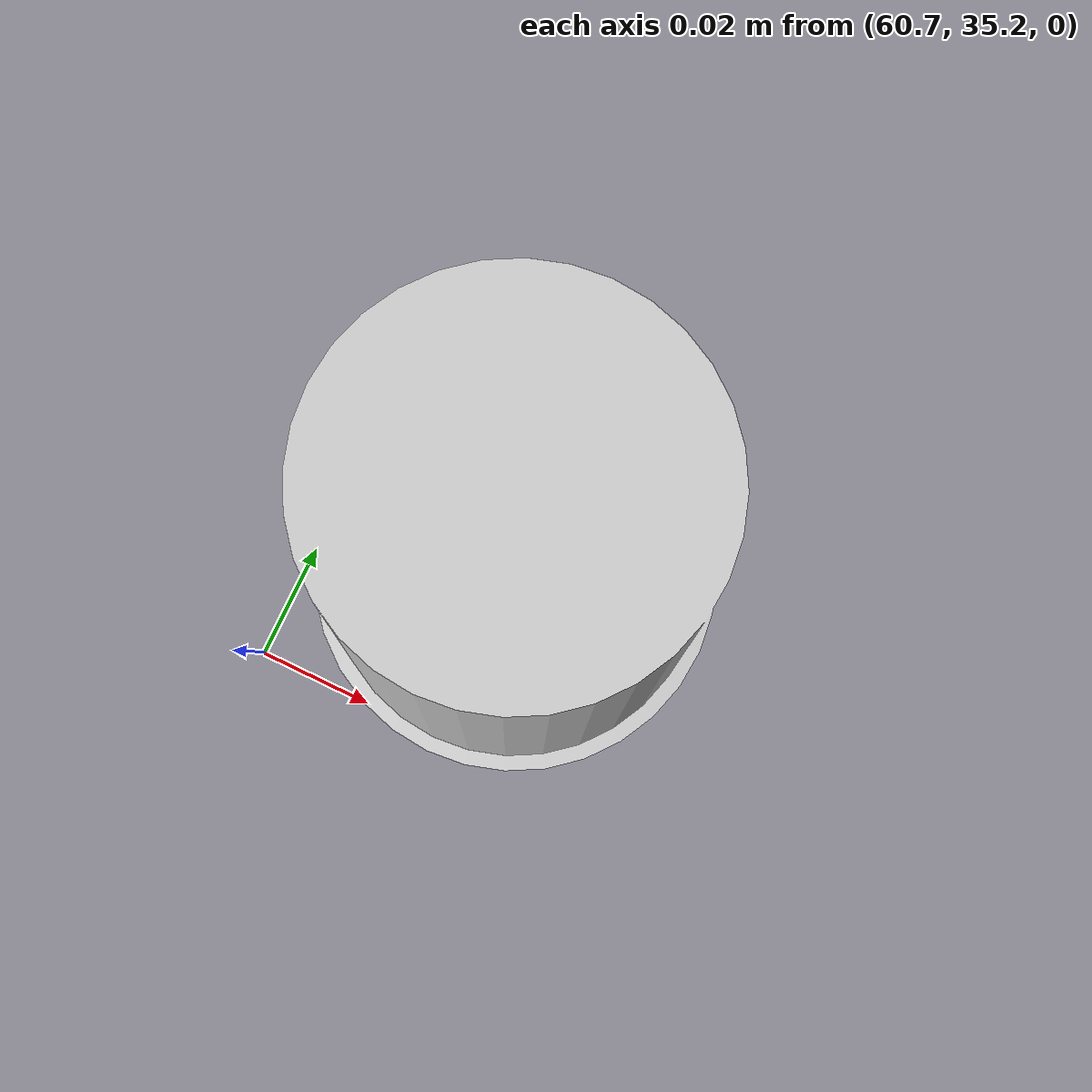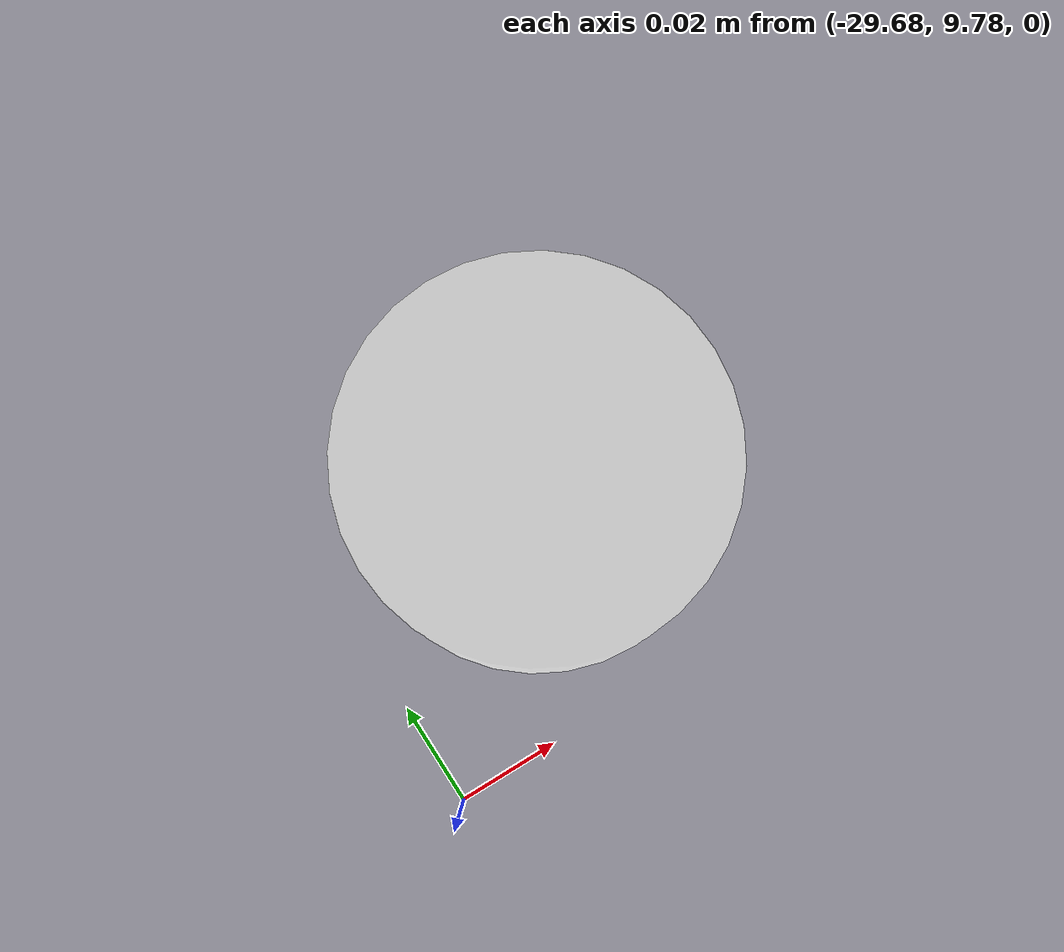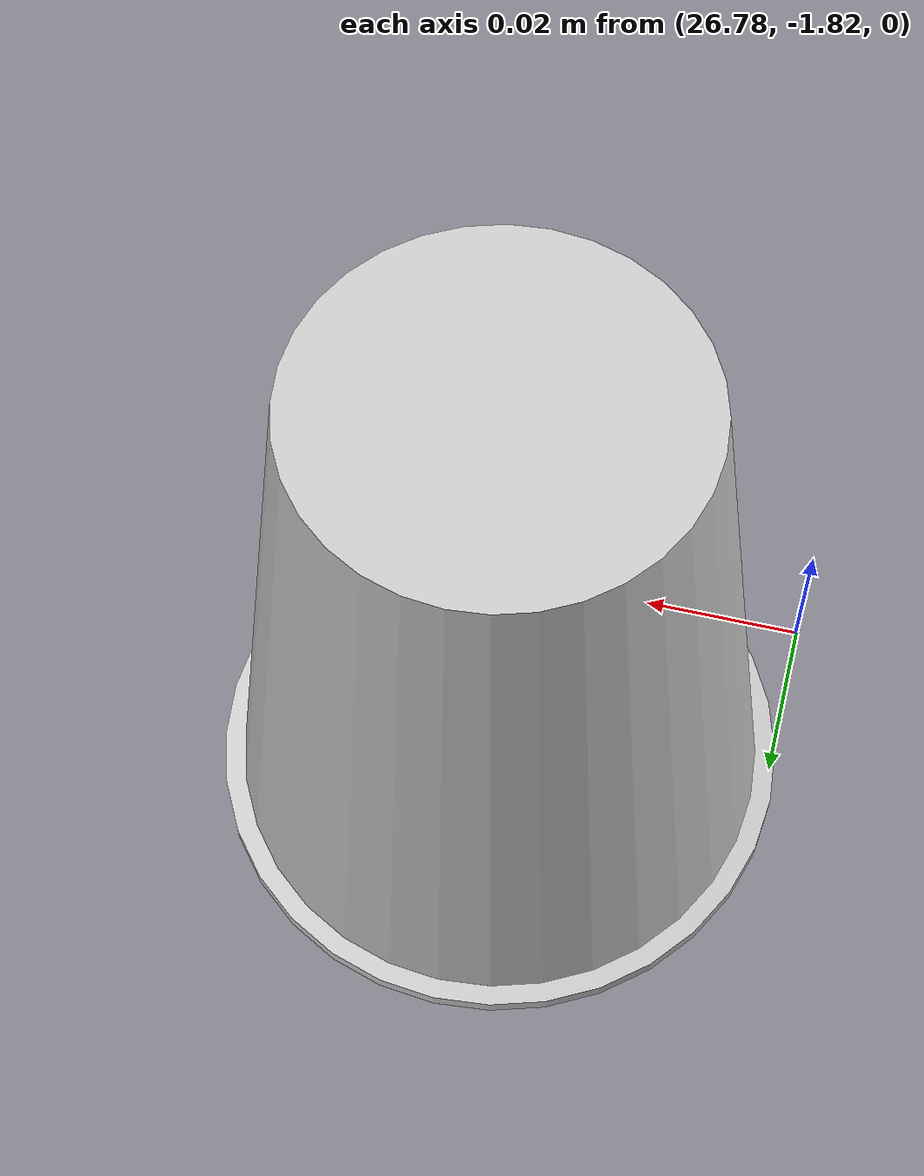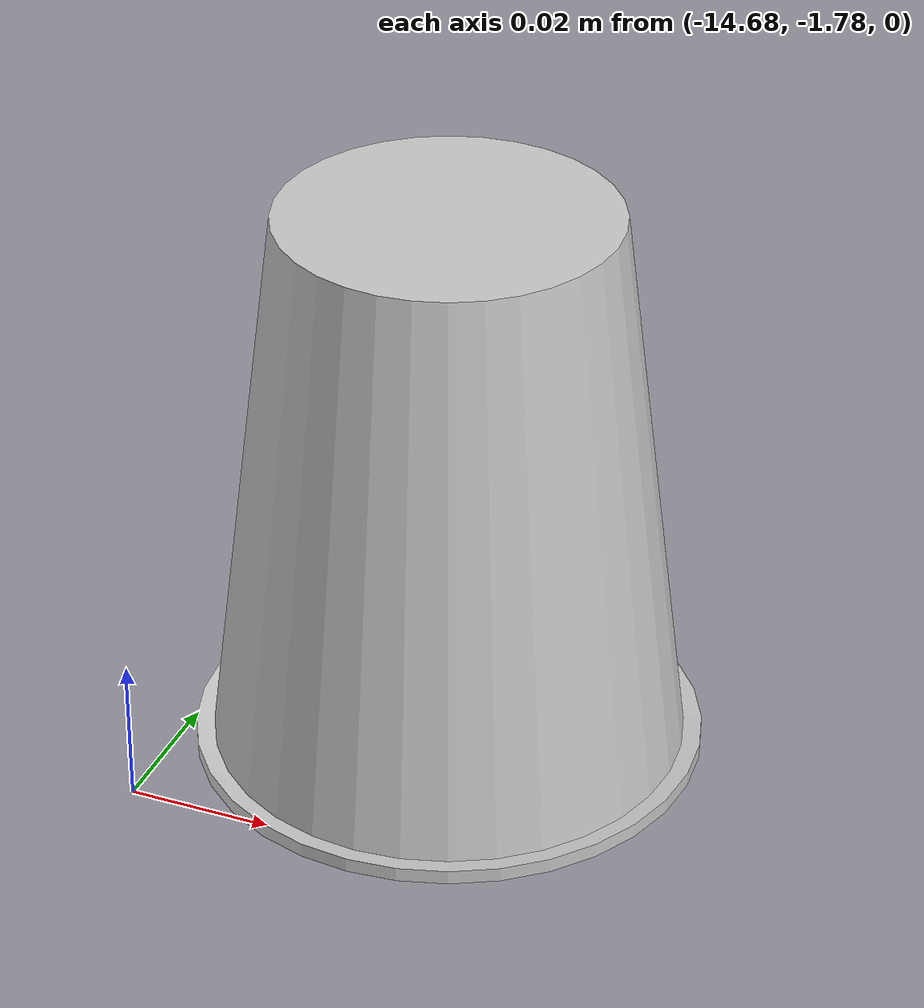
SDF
<?xml version='1.0' encoding='UTF-8'?>
<sdf version="1.4">
  <model name="some track">
    <include>
      <uri>model://cone_yellow</uri>
      <pose>2.4687968414439507 -1.571403360044684 0 0 0 0</pose>
      <name>cone_right</name>
    </include>
    <include>
      <uri>model://cone_yellow</uri>
      <pose>7.2177965690843555 -1.7217569277008586 0 0 0 0</pose>
      <name>cone_right</name>
    </include>
    <include>
      <uri>model://cone_yellow</uri>
      <pose>12.11728470155513 -1.8536976725558636 0 0 0 0</pose>
      <name>cone_right</name>
    </include>
    <include>
      <uri>model://cone_yellow</uri>
      <pose>17.0661174567465 -1.7040297701637646 0 0 0 0</pose>
      <name>cone_right</name>
    </include>
    <include>
      <uri>model://cone_yellow</uri>
      <pose>21.72917562834383 -1.8297416030346445 0 0 0 0</pose>
      <name>cone_right</name>
    </include>
    <include>
      <uri>model://cone_yellow</uri>
      <pose>26.81407494741656 -1.7948843006090547 0 0 0 0</pose>
      <name>cone_right</name>
    </include>
    <include>
      <uri>model://cone_yellow</uri>
      <pose>35.31961328573314 4.968242787702878 0 0 0 0</pose>
      <name>cone_right</name>
    </include>
    <include>
      <uri>model://cone_yellow</uri>
      <pose>35.909901975970165 10.293324491218828 0 0 0 0</pose>
      <name>cone_right</name>
    </include>
    <include>
      <uri>model://cone_yellow</uri>
      <pose>35.97671006146863 15.26495160903515 0 0 0 0</pose>
      <name>cone_right</name>
    </include>
    <include>
      <uri>model://cone_yellow</uri>
      <pose>37.98491671668625 18.156239703634824 0 0 0 0</pose>
      <name>cone_right</name>
    </include>
    <include>
      <uri>model://cone_yellow</uri>
      <pose>41.90302554091211 19.98205698067222 0 0 0 0</pose>
      <name>cone_right</name>
    </include>
    <include>
      <uri>model://cone_yellow</uri>
      <pose>46.261161255737356 20.79041227892938 0 0 0 0</pose>
      <name>cone_right</name>
    </include>
    <include>
      <uri>model://cone_yellow</uri>
      <pose>50.94587187525274 20.99263552426847 0 0 0 0</pose>
      <name>cone_right</name>
    </include>
    <include>
      <uri>model://cone_yellow</uri>
      <pose>55.831312539195174 21.154967270968132 0 0 0 0</pose>
      <name>cone_right</name>
    </include>
    <include>
      <uri>model://cone_yellow</uri>
      <pose>61.00761963873726 22.209639452450606 0 0 0 0</pose>
      <name>cone_right</name>
    </include>
    <include>
      <uri>model://cone_yellow</uri>
      <pose>65.95587569915999 32.14256178915551 0 0 0 0</pose>
      <name>cone_right</name>
    </include>
    <include>
      <uri>model://cone_yellow</uri>
      <pose>57.62628428112058 39.28105670189558 0 0 0 0</pose>
      <name>cone_right</name>
    </include>
    <include>
      <uri>model://cone_yellow</uri>
      <pose>52.57007662282878 39.63357216936336 0 0 0 0</pose>
      <name>cone_right</name>
    </include>
    <include>
      <uri>model://cone_yellow</uri>
      <pose>47.757731710413886 39.98364501270321 0 0 0 0</pose>
      <name>cone_right</name>
    </include>
    <include>
      <uri>model://cone_yellow</uri>
      <pose>42.809611348179246 40.16740664524 0 0 0 0</pose>
      <name>cone_right</name>
    </include>
    <include>
      <uri>model://cone_yellow</uri>
      <pose>37.83437497268665 39.956879034266606 0 0 0 0</pose>
      <name>cone_right</name>
    </include>
    <include>
      <uri>model://cone_yellow</uri>
      <pose>33.37013238406025 40.380234410868525 0 0 0 0</pose>
      <name>cone_right</name>
    </include>
    <include>
      <uri>model://cone_yellow</uri>
      <pose>28.533659258659707 41.24069791461943 0 0 0 0</pose>
      <name>cone_right</name>
    </include>
    <include>
      <uri>model://cone_yellow</uri>
      <pose>22.9521634283543 39.72158356873673 0 0 0 0</pose>
      <name>cone_right</name>
    </include>
    <include>
      <uri>model://cone_yellow</uri>
      <pose>19.599863077943716 35.06798578482923 0 0 0 0</pose>
      <name>cone_right</name>
    </include>
    <include>
      <uri>model://cone_yellow</uri>
      <pose>14.230888687370472 31.303739400898877 0 0 0 0</pose>
      <name>cone_right</name>
    </include>
    <include>
      <uri>model://cone_yellow</uri>
      <pose>11.206052524723852 33.16606974603546 0 0 0 0</pose>
      <name>cone_right</name>
    </include>
    <include>
      <uri>model://cone_yellow</uri>
      <pose>10.666291188033235 37.21907371908294 0 0 0 0</pose>
      <name>cone_right</name>
    </include>
    <include>
      <uri>model://cone_yellow</uri>
      <pose>-0.2661393926046717 40.174072222145504 0 0 0 0</pose>
      <name>cone_right</name>
    </include>
    <include>
      <uri>model://cone_yellow</uri>
      <pose>-9.922156053905944 37.32917352561087 0 0 0 0</pose>
      <name>cone_right</name>
    </include>
    <include>
      <uri>model://cone_yellow</uri>
      <pose>-13.3286671744529 33.129755115171605 0 0 0 0</pose>
      <name>cone_right</name>
    </include>
    <include>
      <uri>model://cone_yellow</uri>
      <pose>-16.273965332474553 29.328940823767894 0 0 0 0</pose>
      <name>cone_right</name>
    </include>
    <include>
      <uri>model://cone_yellow</uri>
      <pose>-19.282260960469614 25.545067778742542 0 0 0 0</pose>
      <name>cone_right</name>
    </include>
    <include>
      <uri>model://cone_yellow</uri>
      <pose>-22.331474059900838 21.703097410864377 0 0 0 0</pose>
      <name>cone_right</name>
    </include>
    <include>
      <uri>model://cone_yellow</uri>
      <pose>-24.94281488389468 17.376499263328075 0 0 0 0</pose>
      <name>cone_right</name>
    </include>
    <include>
      <uri>model://cone_yellow</uri>
      <pose>-27.738028049315652 13.696034982544516 0 0 0 0</pose>
      <name>cone_right</name>
    </include>
    <include>
      <uri>model://cone_yellow</uri>
      <pose>-29.41892570606269 3.1101639849635525 0 0 0 0</pose>
      <name>cone_right</name>
    </include>
    <include>
      <uri>model://cone_yellow</uri>
      <pose>-24.877198602473563 -0.6861467226545961 0 0 0 0</pose>
      <name>cone_right</name>
    </include>
    <include>
      <uri>model://cone_yellow</uri>
      <pose>-19.559344336529676 -1.308457982126582 0 0 0 0</pose>
      <name>cone_right</name>
    </include>
    <include>
      <uri>model://cone_yellow</uri>
      <pose>-14.646183079593072 -1.7499905743750774 0 0 0 0</pose>
      <name>cone_right</name>
    </include>
    <include>
      <uri>model://cone_yellow</uri>
      <pose>-9.72495009631012 -1.7336230789561107 0 0 0 0</pose>
      <name>cone_right</name>
    </include>
    <include>
      <uri>model://cone_yellow</uri>
      <pose>30.696620805458657 -1.0733159711058917 0 0 0 0</pose>
      <name>cone_right</name>
    </include>
    <include>
      <uri>model://cone_yellow</uri>
      <pose>33.83083852341473 1.175144565688683 0 0 0 0</pose>
      <name>cone_right</name>
    </include>
    <include>
      <uri>model://cone_yellow</uri>
      <pose>64.62225643007372 24.367598621143777 0 0 0 0</pose>
      <name>cone_right</name>
    </include>
    <include>
      <uri>model://cone_yellow</uri>
      <pose>66.18368735840328 28.152885720124537 0 0 0 0</pose>
      <name>cone_right</name>
    </include>
    <include>
      <uri>model://cone_yellow</uri>
      <pose>64.90615296249727 35.48687947439976 0 0 0 0</pose>
      <name>cone_right</name>
    </include>
    <include>
      <uri>model://cone_yellow</uri>
      <pose>62.35108417068526 38.04194826621177 0 0 0 0</pose>
      <name>cone_right</name>
    </include>
    <include>
      <uri>model://cone_yellow</uri>
      <pose>17.784859743337822 31.77327844041562 0 0 0 0</pose>
      <name>cone_right</name>
    </include>
    <include>
      <uri>model://cone_yellow</uri>
      <pose>8.851483614558362 40.05633216901573 0 0 0 0</pose>
      <name>cone_right</name>
    </include>
    <include>
      <uri>model://cone_yellow</uri>
      <pose>6.318649003333533 40.60397208495624 0 0 0 0</pose>
      <name>cone_right</name>
    </include>
    <include>
      <uri>model://cone_yellow</uri>
      <pose>3.306629465660766 40.56974459020996 0 0 0 0</pose>
      <name>cone_right</name>
    </include>
    <include>
      <uri>model://cone_yellow</uri>
      <pose>-3.966713167924034 40.62750348759431 0 0 0 0</pose>
      <name>cone_right</name>
    </include>
    <include>
      <uri>model://cone_yellow</uri>
      <pose>-6.961618958223667 39.66485519785515 0 0 0 0</pose>
      <name>cone_right</name>
    </include>
    <include>
      <uri>model://cone_yellow</uri>
      <pose>-29.637334227635137 9.822758215941004 0 0 0 0</pose>
      <name>cone_right</name>
    </include>
    <include>
      <uri>model://cone_yellow</uri>
      <pose>-30.038437681693125 6.0122754023901415 0 0 0 0</pose>
      <name>cone_right</name>
    </include>
    <include>
      <uri>model://cone_yellow</uri>
      <pose>-27.76551810869786 0.39682704557834825 0 0 0 0</pose>
      <name>cone_right</name>
    </include>
    <include>
      <uri>model://cone_yellow</uri>
      <pose>-2.7565165774686093 -1.7538426320828862 0 0 0 0</pose>
      <name>cone_right</name>
    </include>
    <include>
      <uri>model://cone_yellow</uri>
      <pose>-5.851450636558006 -1.8022009767561542 0 0 0 0</pose>
      <name>cone_right</name>
    </include>
    <include>
      <uri>model://cone_blue</uri>
      <pose>2.3977461797194954 1.6778199015162256 0 0 0 0</pose>
      <name>cone_left</name>
    </include>
    <include>
      <uri>model://cone_blue</uri>
      <pose>7.352291628557972 1.5254589688753437 0 0 0 0</pose>
      <name>cone_left</name>
    </include>
    <include>
      <uri>model://cone_blue</uri>
      <pose>12.164695073750066 1.3959565023692682 0 0 0 0</pose>
      <name>cone_left</name>
    </include>
    <include>
      <uri>model://cone_blue</uri>
      <pose>16.950639240102408 1.543918009816803 0 0 0 0</pose>
      <name>cone_left</name>
    </include>
    <include>
      <uri>model://cone_blue</uri>
      <pose>21.890267686844197 1.416263533851019 0 0 0 0</pose>
      <name>cone_left</name>
    </include>
    <include>
      <uri>model://cone_blue</uri>
      <pose>26.662239902552326 1.4515670110774574 0 0 0 0</pose>
      <name>cone_left</name>
    </include>
    <include>
      <uri>model://cone_blue</uri>
      <pose>30.718785063027887 2.840395839916845 0 0 0 0</pose>
      <name>cone_left</name>
    </include>
    <include>
      <uri>model://cone_blue</uri>
      <pose>32.26282054075304 6.072107867428207 0 0 0 0</pose>
      <name>cone_left</name>
    </include>
    <include>
      <uri>model://cone_blue</uri>
      <pose>32.66276541192594 10.429721464964702 0 0 0 0</pose>
      <name>cone_left</name>
    </include>
    <include>
      <uri>model://cone_blue</uri>
      <pose>32.73089112595232 15.429752816081043 0 0 0 0</pose>
      <name>cone_left</name>
    </include>
    <include>
      <uri>model://cone_blue</uri>
      <pose>40.710457215756136 23.00534671039292 0 0 0 0</pose>
      <name>cone_left</name>
    </include>
    <include>
      <uri>model://cone_blue</uri>
      <pose>45.825710381699686 24.011108249725105 0 0 0 0</pose>
      <name>cone_left</name>
    </include>
    <include>
      <uri>model://cone_blue</uri>
      <pose>50.852890827136456 24.241305178864206 0 0 0 0</pose>
      <name>cone_left</name>
    </include>
    <include>
      <uri>model://cone_blue</uri>
      <pose>55.70068288454001 24.402340962634167 0 0 0 0</pose>
      <name>cone_left</name>
    </include>
    <include>
      <uri>model://cone_blue</uri>
      <pose>60.04442900078583 25.313631043122644 0 0 0 0</pose>
      <name>cone_left</name>
    </include>
    <include>
      <uri>model://cone_blue</uri>
      <pose>62.66162465675967 28.10801646526442 0 0 0 0</pose>
      <name>cone_left</name>
    </include>
    <include>
      <uri>model://cone_blue</uri>
      <pose>62.71728114801657 31.870522576349515 0 0 0 0</pose>
      <name>cone_left</name>
    </include>
    <include>
      <uri>model://cone_blue</uri>
      <pose>60.73277280885991 35.23237690083124 0 0 0 0</pose>
      <name>cone_left</name>
    </include>
    <include>
      <uri>model://cone_blue</uri>
      <pose>57.08929031760545 36.07572715828414 0 0 0 0</pose>
      <name>cone_left</name>
    </include>
    <include>
      <uri>model://cone_blue</uri>
      <pose>52.375705828076875 36.389389684645906 0 0 0 0</pose>
      <name>cone_left</name>
    </include>
    <include>
      <uri>model://cone_blue</uri>
      <pose>47.514233233093215 36.74277962032072 0 0 0 0</pose>
      <name>cone_left</name>
    </include>
    <include>
      <uri>model://cone_blue</uri>
      <pose>42.75417159973573 36.91787953590663 0 0 0 0</pose>
      <name>cone_left</name>
    </include>
    <include>
      <uri>model://cone_blue</uri>
      <pose>37.98839887403188 36.71053083393221 0 0 0 0</pose>
      <name>cone_left</name>
    </include>
    <include>
      <uri>model://cone_blue</uri>
      <pose>32.87893883421129 37.167567466321245 0 0 0 0</pose>
      <name>cone_left</name>
    </include>
    <include>
      <uri>model://cone_blue</uri>
      <pose>28.03451540360199 38.029256585253734 0 0 0 0</pose>
      <name>cone_left</name>
    </include>
    <include>
      <uri>model://cone_blue</uri>
      <pose>24.517897713679265 36.873606014794646 0 0 0 0</pose>
      <name>cone_left</name>
    </include>
    <include>
      <uri>model://cone_blue</uri>
      <pose>22.448432118056843 33.5033278593679 0 0 0 0</pose>
      <name>cone_left</name>
    </include>
    <include>
      <uri>model://cone_blue</uri>
      <pose>20.056612685998214 29.12621267308765 0 0 0 0</pose>
      <name>cone_left</name>
    </include>
    <include>
      <uri>model://cone_blue</uri>
      <pose>13.697827727380764 28.097753435094468 0 0 0 0</pose>
      <name>cone_left</name>
    </include>
    <include>
      <uri>model://cone_blue</uri>
      <pose>8.787647472764021 30.99493709125474 0 0 0 0</pose>
      <name>cone_left</name>
    </include>
    <include>
      <uri>model://cone_blue</uri>
      <pose>7.487586159074573 36.54206977605682 0 0 0 0</pose>
      <name>cone_left</name>
    </include>
    <include>
      <uri>model://cone_blue</uri>
      <pose>4.494379738019011 37.25086624573822 0 0 0 0</pose>
      <name>cone_left</name>
    </include>
    <include>
      <uri>model://cone_blue</uri>
      <pose>0.12464814128351703 36.94765236364017 0 0 0 0</pose>
      <name>cone_left</name>
    </include>
    <include>
      <uri>model://cone_blue</uri>
      <pose>-4.696435207831599 36.93150474003095 0 0 0 0</pose>
      <name>cone_left</name>
    </include>
    <include>
      <uri>model://cone_blue</uri>
      <pose>-8.054704236100758 34.66926305565589 0 0 0 0</pose>
      <name>cone_left</name>
    </include>
    <include>
      <uri>model://cone_blue</uri>
      <pose>-10.727442147230065 31.181389554567133 0 0 0 0</pose>
      <name>cone_left</name>
    </include>
    <include>
      <uri>model://cone_blue</uri>
      <pose>-13.710073674662496 27.33170283919977 0 0 0 0</pose>
      <name>cone_left</name>
    </include>
    <include>
      <uri>model://cone_blue</uri>
      <pose>-16.751376017534326 23.506165768928575 0 0 0 0</pose>
      <name>cone_left</name>
    </include>
    <include>
      <uri>model://cone_blue</uri>
      <pose>-19.747241851397252 19.7322488899139 0 0 0 0</pose>
      <name>cone_left</name>
    </include>
    <include>
      <uri>model://cone_blue</uri>
      <pose>-22.13476129366553 15.740242854814666 0 0 0 0</pose>
      <name>cone_left</name>
    </include>
    <include>
      <uri>model://cone_blue</uri>
      <pose>-25.18813705929474 11.680952865356689 0 0 0 0</pose>
      <name>cone_left</name>
    </include>
    <include>
      <uri>model://cone_blue</uri>
      <pose>-26.257999206250037 3.865838294955709 0 0 0 0</pose>
      <name>cone_left</name>
    </include>
    <include>
      <uri>model://cone_blue</uri>
      <pose>-23.94044454812743 2.425925230508776 0 0 0 0</pose>
      <name>cone_left</name>
    </include>
    <include>
      <uri>model://cone_blue</uri>
      <pose>-19.081825142532097 1.9062699098362672 0 0 0 0</pose>
      <name>cone_left</name>
    </include>
    <include>
      <uri>model://cone_blue</uri>
      <pose>-14.529840052596661 1.4979263426764213 0 0 0 0</pose>
      <name>cone_left</name>
    </include>
    <include>
      <uri>model://cone_blue</uri>
      <pose>-9.679018819738502 1.5160523383482856 0 0 0 0</pose>
      <name>cone_left</name>
    </include>
    <include>
      <uri>model://cone_blue</uri>
      <pose>34.33995963822764 19.30477712625702 0 0 0 0</pose>
      <name>cone_left</name>
    </include>
    <include>
      <uri>model://cone_blue</uri>
      <pose>37.17892496246321 21.386685030696437 0 0 0 0</pose>
      <name>cone_left</name>
    </include>
    <include>
      <uri>model://cone_blue</uri>
      <pose>17.202992332651036 28.00825401832466 0 0 0 0</pose>
      <name>cone_left</name>
    </include>
    <include>
      <uri>model://cone_blue</uri>
      <pose>10.870905804588968 29.06930635545939 0 0 0 0</pose>
      <name>cone_left</name>
    </include>
    <include>
      <uri>model://cone_blue</uri>
      <pose>8.06425123539389 33.79270063044623 0 0 0 0</pose>
      <name>cone_left</name>
    </include>
    <include>
      <uri>model://cone_blue</uri>
      <pose>-26.42850659517125 8.61944785376705 0 0 0 0</pose>
      <name>cone_left</name>
    </include>
    <include>
      <uri>model://cone_blue</uri>
      <pose>-26.69590889787657 6.0122754023901415 0 0 0 0</pose>
      <name>cone_left</name>
    </include>
    <include>
      <uri>model://cone_blue</uri>
      <pose>-2.7565165774686093 1.6312414950461473 0 0 0 0</pose>
      <name>cone_left</name>
    </include>
    <include>
      <uri>model://cone_blue</uri>
      <pose>-5.948167325904549 1.5828831503728722 0 0 0 0</pose>
      <name>cone_left</name>
    </include>
    <include>
      <uri>model://cone_orange_big</uri>
      <pose>-1.3 2.125 0 0 0 0</pose>
      <name>cone_orange_big</name>
    </include>
    <include>
      <uri>model://cone_orange_big</uri>
      <pose>-1.3 -2.125 0 0 0 0</pose>
      <name>cone_orange_big</name>
    </include>
    <include>
      <uri>model://cone_orange_big</uri>
      <pose>1.3 2.125 0 0 0 0</pose>
      <name>cone_orange_big</name>
    </include>
    <include>
      <uri>model://cone_orange_big</uri>
      <pose>1.3 -2.125 0 0 0 0</pose>
      <name>cone_orange_big</name>
    </include>
  </model>
</sdf>

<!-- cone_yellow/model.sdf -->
<sdf version='1.4'>
  <model name="cone_yellow">
    <link name="link">
    <collision name="collision"><geometry><box><size> 0.05 0.05 0.01</size>
             </box></geometry></collision>
      <visual name="visual">
        <geometry>
          <mesh>
            <uri>model://cup.dae</uri>
            <scale>1 1 1</scale>
          </mesh>
        </geometry>
        <material>
            <script>
              <uri>model://cone_yellow/materials/scripts</uri>
              <uri>model://cone_yellow/materials/textures</uri>
              <name>cone_yellow/Image</name>
            </script>
        </material>
      </visual>
    </link>
  </model>
</sdf>

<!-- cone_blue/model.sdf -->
<sdf version='1.4'>
  <model name="cone_blue">
    <link name="link">
    <collision name="collision"><geometry><box><size> 0.05 0.05 0.01</size>
             </box></geometry></collision>
      <visual name="visual">
        <geometry>
          <mesh>
            <uri>model://cup.dae</uri>
            <scale>1 1 1</scale>
          </mesh>
        </geometry>
        <material>
            <script>
              <uri>model://cone_blue/materials/scripts</uri>
              <uri>model://cone_blue/materials/textures</uri>
              <name>cone_blue/Image</name>
            </script>
        </material>
      </visual>
    </link>
  </model>
</sdf>

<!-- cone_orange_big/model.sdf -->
<sdf version='1.4'>
  <model name="cone_orange_big">
    <link name="link">
    <collision name="collision"><geometry><box><size> 0.05 0.05 0.01</size>
             </box></geometry></collision>
      <visual name="visual">
        <geometry>
          <mesh>
            <uri>model://cup.dae</uri>
            <scale>1 1 1</scale>
          </mesh>
        </geometry>
        <material>
            <script>
              <uri>model://cone_orange_big/materials/scripts</uri>
              <uri>model://cone_orange_big/materials/textures</uri>
              <name>cone_orange_big/Image</name>
            </script>
        </material>
      </visual>
    </link>
  </model>
</sdf>
